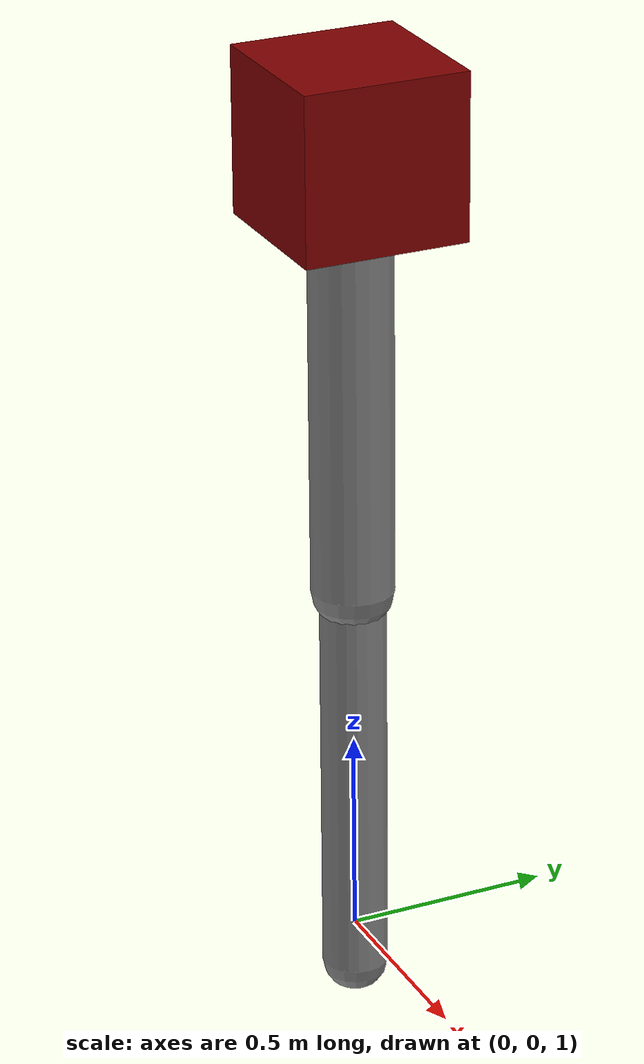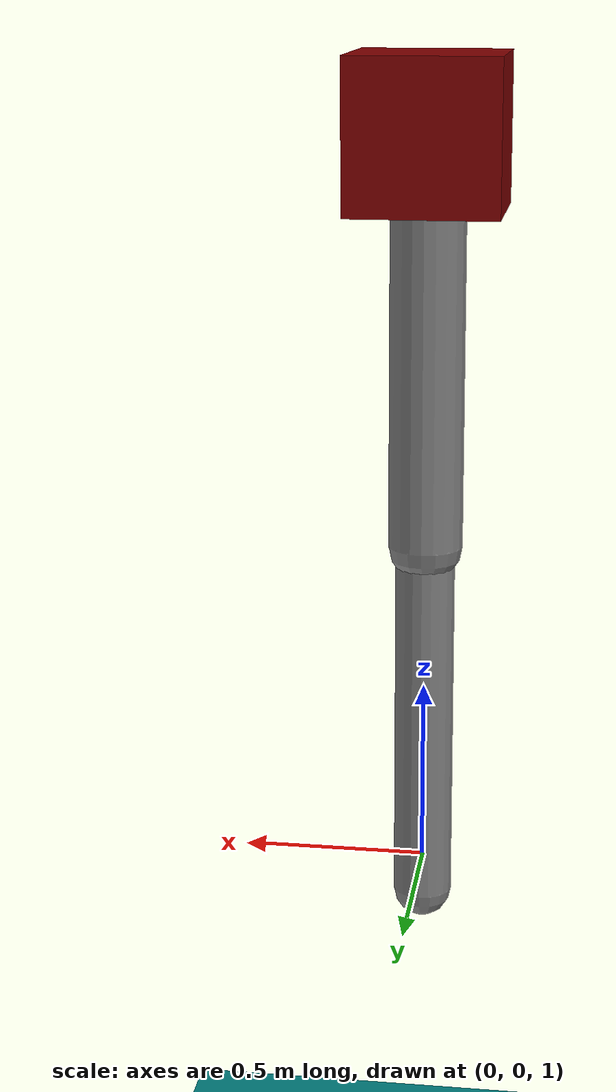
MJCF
<mujoco>
    <compiler angle="radian" coordinate="local" />
    <option timestep="0.01" />

    <worldbody>
        <geom type="plane" name="plane" size="10 10 1" rgba="0 0.5 0.5 1" pos="0 0 0"/>
        <light pos="10 10 10" dir="-10 -10 -10" />
        <camera name="Free" pos="-3.411 -6.658 3.753" xyaxes="0.915 -0.403 -0.000 0.082 0.186 0.979"/>

        <body name="base" pos="0 0 3">
            <joint name="base_joint" type="hinge" axis="0 0 1" range="0 0.1" damping="10"/>
            <geom type="box" size=".2 .2 .2" rgba=".5 0 0 1" pos="0 0 0"/>

            <body name="link1" pos="0.0 0 -0.1" zaxis="1 0 0">
                <joint name="knee_joint" type="hinge" axis="0 1 0" range="-1.57 1.57" damping="10"/>
                <geom name="link1" type="capsule" fromto="0 0 0 1 0 0" size="0.1" />
                <site name="link1" type="capsule" fromto="0 0 0 1 0 0" size="0.1" />

                <body name="link2" pos="1 0 0">
                    <joint name="ankle_joint" type="hinge" axis="0 1 0" range="-1.57 1.57" damping="10"/>
                    <geom name="link2" type="capsule" fromto="0 0 0 1 0 0" size="0.08" />
                    <site name="link2" type="capsule" fromto="0 0 0 1 0 0" size="0.08" />
                </body>

            </body>

        </body>
    </worldbody>

    <actuator>
        <motor joint="knee_joint" gear=" 1.0"/>
        <motor joint="ankle_joint" gear="1.0"/>
    </actuator>
    <sensor>
        <jointpos name="knee_pos" joint="knee_joint"  cutoff="40"/>
        <jointpos name="ankle_pos" joint="ankle_joint" cutoff="40"/>

        <jointvel name="knee_vel" joint="knee_joint" cutoff="40"/>
        <jointvel name="ankle_vel" joint="ankle_joint" cutoff="40"/>

        <frameangacc name="knee_acc"  objtype="site" objname="link1"  cutoff="40"/>
        <frameangacc name="ankle_acc" objtype="site" objname="link2"  cutoff="40"/>
    </sensor>
</mujoco>
